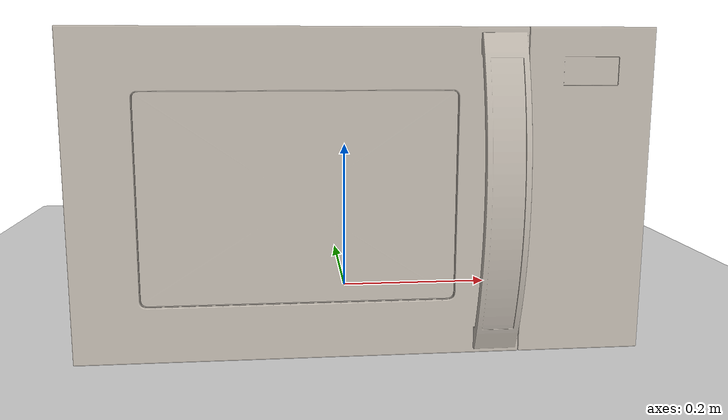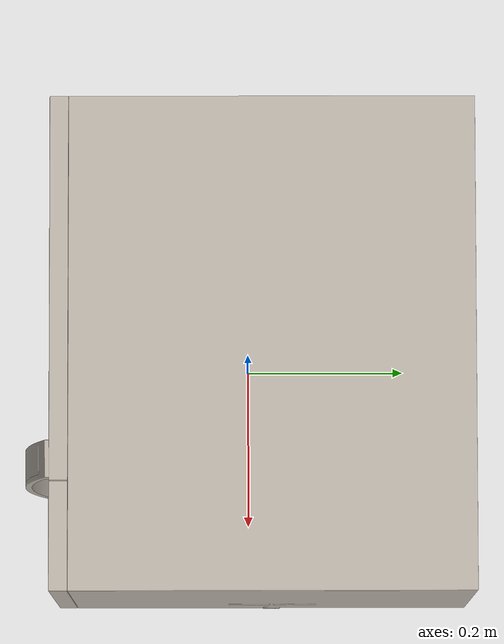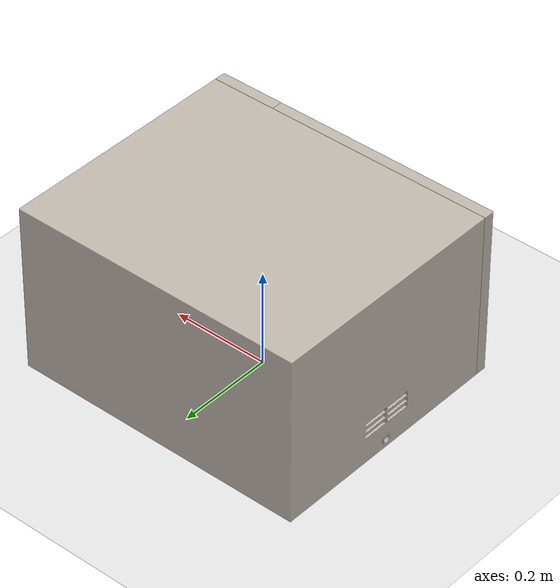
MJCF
<mujoco model="Microwave041">
  <compiler
    angle="radian"
    assetdir="../../examples/mujoco_models/Microwave041_obj"
    texturedir="../../Lightwheel/Microwave041/texture"
  />

  <visual>
    <global offwidth="1024" offheight="1024" />
  </visual>

  <asset>
    <texture name="T_Microwave041_BC001" type="2d" file="T_Microwave041_BC001.png" />
    <material
      name="material_0"
      texture="T_Microwave041_BC001"
      rgba="1 1 1 1"
      texuniform="false"
      texrepeat="1 1"
      specular="0"
      reflectance="0"
      shininess="0"
    />
    <texture name="T_Microwave041_ORM001" type="2d" file="T_Microwave041_ORM001.png" />
    <material
      name="material_1"
      texture="T_Microwave041_ORM001"
      rgba="1 1 1 1"
      texuniform="false"
      texrepeat="1 1"
      specular="0"
      reflectance="0"
      shininess="0"
    />
    <mesh name="Microwave041_Body001" file="Microwave041_Body001.obj" />
    <mesh name="Microwave041_door_Clear" file="Microwave041_door_Clear.obj" />
    <mesh name="Microwave041_door" file="Microwave041_door.obj" />
    <mesh name="Microwave041_Disc001" file="Microwave041_Disc001.obj" />
  </asset>

  <worldbody>
    <geom name="ground" type="plane" size="5 5 0.1" rgba="0.9 0.9 0.9 1" />
    <light pos="0 0 3" dir="0 0 -1" diffuse="0.7 0.7 0.7" specular="0.3 0.3 0.3" />
    <light pos="2 2 2" dir="-1 -1 -1" diffuse="0.6 0.6 0.6" specular="0.2 0.2 0.2" />

    <!-- Main object body -->
    <body name="Microwave041" pos="0 0 0.176000">
    <inertial pos="0 0 0" quat="1 0 0 0" mass="19.898885" diaginertia="1 1 1" />

      <geom type="mesh" mesh="Microwave041_Body001" material="material_0" />

      <body name="Microwave041_Disc001" pos="0 0 0">
        <joint
          name="Disc001_joint"
          type="hinge"
          axis="0.000000 0.000000 1.000000"
          pos="-0.070377 -0.036144 -0.125623"
          damping="1.0"
          limited="true"
          range="0.000000 359.999989"
        />
        <geom type="mesh" mesh="Microwave041_Disc001" material="material_0" />
      </body>
      <body name="Microwave041_door" pos="0 0 0">
        <joint
          name="microjoint"
          type="hinge"
          axis="0.000000 0.000000 1.000000"
          pos="-0.293211 -0.232038 0.000000"
          damping="1.0"
          limited="true"
          range="-1.570796 0.000000"
        />
        <geom type="mesh" mesh="Microwave041_door_Clear" material="material_0" />
        <geom type="mesh" mesh="Microwave041_door" material="material_0" />
      </body>
    </body>
  </worldbody>
</mujoco>
